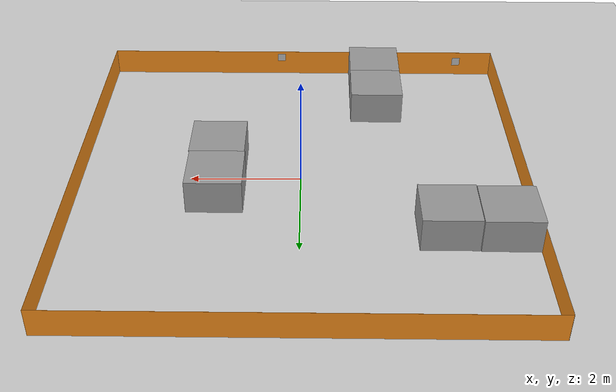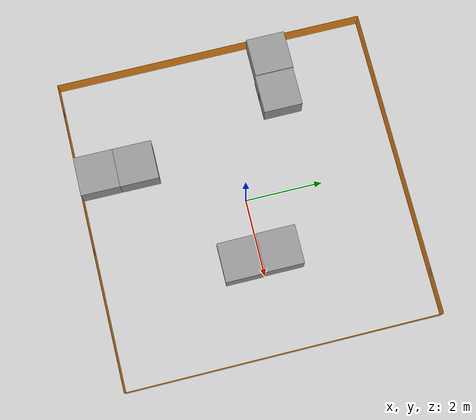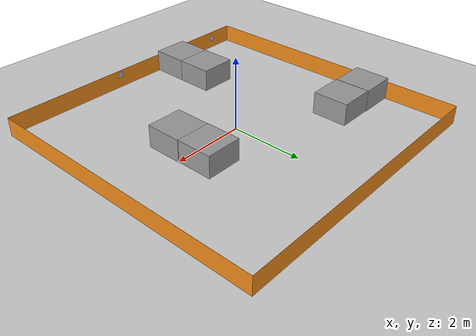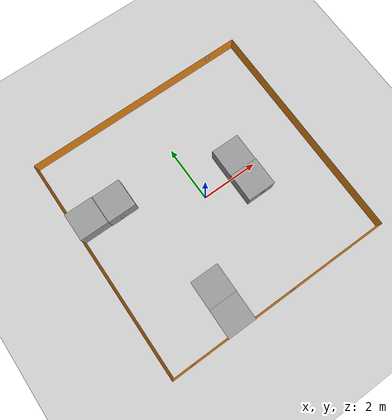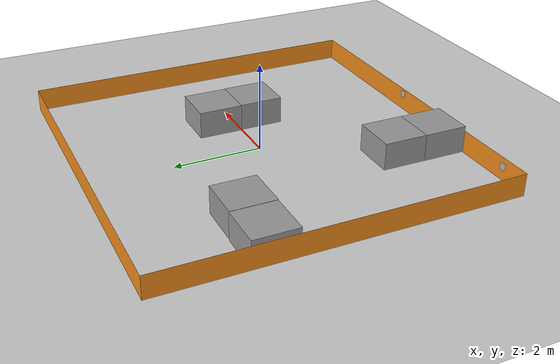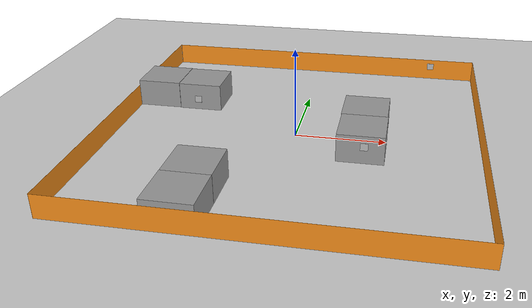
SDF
<sdf version="1.6">
 <world name="default">
  <light name="sun" type="directional">
   <pose>0 0 10 0 -0 0</pose>
   <diffuse>0.8 0.8 0.8 1</diffuse>
   <specular>0.1 0.1 0.1 1</specular>
   <attenuation>
    <range>1000</range>
    <constant>0.9</constant>
    <linear>0.01</linear>
    <quadratic>0.001</quadratic>
   </attenuation>
   <direction>-0.5 0.5 -1</direction>
  </light>
  <model name="ground_plane">
   <static>1</static>
   <link name="link">
    <collision name="collision">
     <geometry><plane><normal>0 0 1</normal><size>100 100</size></plane></geometry>
     <surface><friction><ode><mu>100</mu><mu2>50</mu2></ode></friction></surface>
    </collision>
    <visual name="visual">
     <cast_shadows>0</cast_shadows>
     <geometry><plane><normal>0 0 1</normal><size>100 100</size></plane></geometry>
     <material>
      <script><uri>file://media/materials/scripts/gazebo.material</uri><name>Gazebo/Grey</name></script>
     </material>
    </visual>
   </link>
  </model>
  <gravity>0 0 -9.8</gravity>
  <magnetic_field>6e-06 2.3e-05 -4.2e-05</magnetic_field>
  <atmosphere type="adiabatic"/>
  <physics name="default_physics" default="0" type="ode">
   <max_step_size>0.001</max_step_size>
   <real_time_factor>1</real_time_factor>
   <real_time_update_rate>1000</real_time_update_rate>
  </physics>
  <scene><ambient>0.4 0.4 0.4 1</ambient><background>0.7 0.7 0.7 1</background><shadows>1</shadows></scene>
  <spherical_coordinates>
   <surface_model>EARTH_WGS84</surface_model>
   <latitude_deg>0</latitude_deg>
   <longitude_deg>0</longitude_deg>
   <elevation>0</elevation>
   <heading_deg>0</heading_deg>
  </spherical_coordinates>
  <model name="wall_0_clone">
   <static>1</static>
   <link name="link">
    <collision name="collision"><geometry><box><size>7.99768 0.001 1</size></box></geometry></collision>
    <visual name="visual">
     <geometry><box><size>7.99768 0.001 1</size></box></geometry>
     <material>
      <script><name>Gazebo/Orange</name><uri>file://media/materials/scripts/gazebo.material</uri></script>
     </material>
    </visual>
   </link>
   <pose>0 -4 0 0 0 -3.14159</pose>
  </model>
  <model name="wall_0_clone_clone">
   <static>1</static>
   <link name="link">
    <collision name="collision"><geometry><box><size>7.99771 0.001 1</size></box></geometry></collision>
    <visual name="visual">
     <geometry><box><size>7.99771 0.001 1</size></box></geometry>
     <material>
      <script><name>Gazebo/Orange</name><uri>file://media/materials/scripts/gazebo.material</uri></script>
     </material>
    </visual>
   </link>
   <pose>4 0 0 0 -0 1.5708</pose>
  </model>
  <model name="wall_0_clone_clone_clone">
   <static>1</static>
   <link name="link">
    <collision name="collision"><geometry><box><size>7.99771 0.001 1</size></box></geometry></collision>
    <visual name="visual">
     <geometry><box><size>7.99771 0.001 1</size></box></geometry>
     <material>
      <script><name>Gazebo/Orange</name><uri>file://media/materials/scripts/gazebo.material</uri></script>
     </material>
    </visual>
   </link>
   <pose>-4 0 0 0 -0 1.5708</pose>
  </model>
  <model name="wall_0_clone_clone_0">
   <static>1</static>
   <link name="link">
    <collision name="collision"><geometry><box><size>7.99771 0.001 1</size></box></geometry></collision>
    <visual name="visual">
     <geometry><box><size>7.99771 0.001 1</size></box></geometry>
     <material>
      <script><name>Gazebo/Orange</name><uri>file://media/materials/scripts/gazebo.material</uri></script>
     </material>
    </visual>
   </link>
   <pose>0.005302 3.99989 0 0 0 -3.14159</pose>
  </model>
  <model name="unit_box_clone_2">
   <pose>1.49997 0.503828 0.310359 0 -0 5.8e-05</pose>
   <link name="link">
    <inertial>
     <mass>1</mass>
     <inertia>
      <ixx>0.166667</ixx>
      <ixy>0</ixy>
      <ixz>0</ixz>
      <iyy>0.166667</iyy>
      <iyz>0</iyz>
      <izz>0.166667</izz>
     </inertia>
    </inertial>
    <collision name="collision"><geometry><box><size>1 1 0.620719</size></box></geometry></collision>
    <visual name="visual">
     <geometry><box><size>1 1 0.620719</size></box></geometry>
     <material>
      <script><name>Gazebo/Grey</name><uri>file://media/materials/scripts/gazebo.material</uri></script>
     </material>
    </visual>
   </link>
  </model>
  <model name="unit_box_clone_0_clone">
   <pose>-3.4995 1.5 0.310359 0 -0 2e-06</pose>
   <link name="link">
    <inertial>
     <mass>1</mass>
     <inertia>
      <ixx>0.166667</ixx>
      <ixy>0</ixy>
      <ixz>0</ixz>
      <iyy>0.166667</iyy>
      <iyz>0</iyz>
      <izz>0.166667</izz>
     </inertia>
    </inertial>
    <collision name="collision"><geometry><box><size>1 1 0.620719</size></box></geometry></collision>
    <visual name="visual">
     <geometry><box><size>1 1 0.620719</size></box></geometry>
     <material>
      <script><name>Gazebo/Grey</name><uri>file://media/materials/scripts/gazebo.material</uri></script>
     </material>
    </visual>
   </link>
  </model>
  <model name="Tag0">
   <static>1</static>
   <link name="link">
    <collision name="collision"><geometry><box><size>0.1615 0.001 0.1615</size></box></geometry></collision>
    <visual name="visual">
     <cast_shadows>0</cast_shadows>
     <geometry><box><size>0.1615 0.001 0.1615</size></box></geometry>
     <material>
      <script>
       <uri>model://Tag0/materials/scripts</uri>
       <uri>model://Tag0/materials/textures</uri>
       <name>vrc/Tag0</name>
      </script>
     </material>
    </visual>
   </link>
   <pose>-2.53845 0.979829 0.25307 0 -0 0</pose>
  </model>
  <model name="unit_box_clone_0_clone_0">
   <pose>-1.4755 -3.4937 0.310359 0 0 -0.005227</pose>
   <link name="link">
    <inertial>
     <mass>1</mass>
     <inertia>
      <ixx>0.166667</ixx>
      <ixy>0</ixy>
      <ixz>0</ixz>
      <iyy>0.166667</iyy>
      <iyz>0</iyz>
      <izz>0.166667</izz>
     </inertia>
    </inertial>
    <collision name="collision"><geometry><box><size>1 1 0.620719</size></box></geometry></collision>
    <visual name="visual">
     <geometry><box><size>1 1 0.620719</size></box></geometry>
     <material>
      <script><name>Gazebo/Grey</name><uri>file://media/materials/scripts/gazebo.material</uri></script>
     </material>
    </visual>
   </link>
  </model>
  <model name="unit_box_clone_0_clone_0_clone">
   <pose>-1.46812 -2.49371 0.310359 0 0 -0.005231</pose>
   <link name="link">
    <inertial>
     <mass>1</mass>
     <inertia>
      <ixx>0.166667</ixx>
      <ixy>0</ixy>
      <ixz>0</ixz>
      <iyy>0.166667</iyy>
      <iyz>0</iyz>
      <izz>0.166667</izz>
     </inertia>
    </inertial>
    <collision name="collision"><geometry><box><size>1 1 0.620719</size></box></geometry></collision>
    <visual name="visual">
     <geometry><box><size>1 1 0.620719</size></box></geometry>
     <material>
      <script><name>Gazebo/Grey</name><uri>file://media/materials/scripts/gazebo.material</uri></script>
     </material>
    </visual>
   </link>
  </model>
  <model name="unit_box_clone_2_clone">
   <pose>1.51411 -0.496182 0.310359 0 -0 5.9e-05</pose>
   <link name="link">
    <inertial>
     <mass>1</mass>
     <inertia>
      <ixx>0.166667</ixx>
      <ixy>0</ixy>
      <ixz>0</ixz>
      <iyy>0.166667</iyy>
      <iyz>0</iyz>
      <izz>0.166667</izz>
     </inertia>
    </inertial>
    <collision name="collision"><geometry><box><size>1 1 0.620719</size></box></geometry></collision>
    <visual name="visual">
     <geometry><box><size>1 1 0.620719</size></box></geometry>
     <material>
      <script><name>Gazebo/Grey</name><uri>file://media/materials/scripts/gazebo.material</uri></script>
     </material>
    </visual>
   </link>
  </model>
  <model name="unit_box_clone_0_clone_clone">
   <pose>-2.48888 1.48254 0.310359 0 -0 2e-06</pose>
   <link name="link">
    <inertial>
     <mass>1</mass>
     <inertia>
      <ixx>0.166667</ixx>
      <ixy>0</ixy>
      <ixz>0</ixz>
      <iyy>0.166667</iyy>
      <iyz>0</iyz>
      <izz>0.166667</izz>
     </inertia>
    </inertial>
    <collision name="collision"><geometry><box><size>1 1 0.620719</size></box></geometry></collision>
    <visual name="visual">
     <geometry><box><size>1 1 0.620719</size></box></geometry>
     <material>
      <script><name>Gazebo/Grey</name><uri>file://media/materials/scripts/gazebo.material</uri></script>
     </material>
    </visual>
   </link>
  </model>
  <model name="Tag1">
   <static>1</static>
   <link name="link">
    <collision name="collision"><geometry><box><size>0.1615 0.001 0.1615</size></box></geometry></collision>
    <visual name="visual">
     <cast_shadows>0</cast_shadows>
     <geometry><box><size>0.1615 0.001 0.1615</size></box></geometry>
     <material>
      <script>
       <uri>model://Tag1/materials/scripts</uri>
       <uri>model://Tag1/materials/textures</uri>
       <name>vrc/Tag1</name>
      </script>
     </material>
    </visual>
   </link>
   <pose>2.92517 3.99794 0.318235 0 -0 0</pose>
  </model>
  <model name="Tag2">
   <static>1</static>
   <link name="link">
    <collision name="collision"><geometry><box><size>0.1615 0.001 0.1615</size></box></geometry></collision>
    <visual name="visual">
     <cast_shadows>0</cast_shadows>
     <geometry><box><size>0.1615 0.001 0.1615</size></box></geometry>
     <material>
      <script>
       <uri>model://Tag2/materials/scripts</uri>
       <uri>model://Tag2/materials/textures</uri>
       <name>vrc/Tag2</name>
      </script>
     </material>
    </visual>
   </link>
   <pose>1.59058 -0.996852 0.378102 0 -0 0</pose>
  </model>
  <model name="Tag3_0">
   <static>1</static>
   <link name="link">
    <collision name="collision"><geometry><box><size>0.1615 0.001 0.1615</size></box></geometry></collision>
    <visual name="visual">
     <cast_shadows>0</cast_shadows>
     <geometry><box><size>0.1615 0.001 0.1615</size></box></geometry>
     <material>
      <script>
       <uri>model://Tag3/materials/scripts</uri>
       <uri>model://Tag3/materials/textures</uri>
       <name>vrc/Tag3</name>
      </script>
     </material>
    </visual>
   </link>
   <pose>0.460032 -3.99587 0.367167 0 -0 0</pose>
  </model>
  <model name="Tag4">
   <static>1</static>
   <link name="link">
    <collision name="collision"><geometry><box><size>0.1615 0.001 0.1615</size></box></geometry></collision>
    <visual name="visual">
     <cast_shadows>0</cast_shadows>
     <geometry><box><size>0.1615 0.001 0.1615</size></box></geometry>
     <material>
      <script>
       <uri>model://Tag4/materials/scripts</uri>
       <uri>model://Tag4/materials/textures</uri>
       <name>vrc/Tag4</name>
      </script>
     </material>
    </visual>
   </link>
   <pose>-3.27587 -3.99955 0.28984 0 -0 0</pose>
  </model>
 </world>
</sdf>
